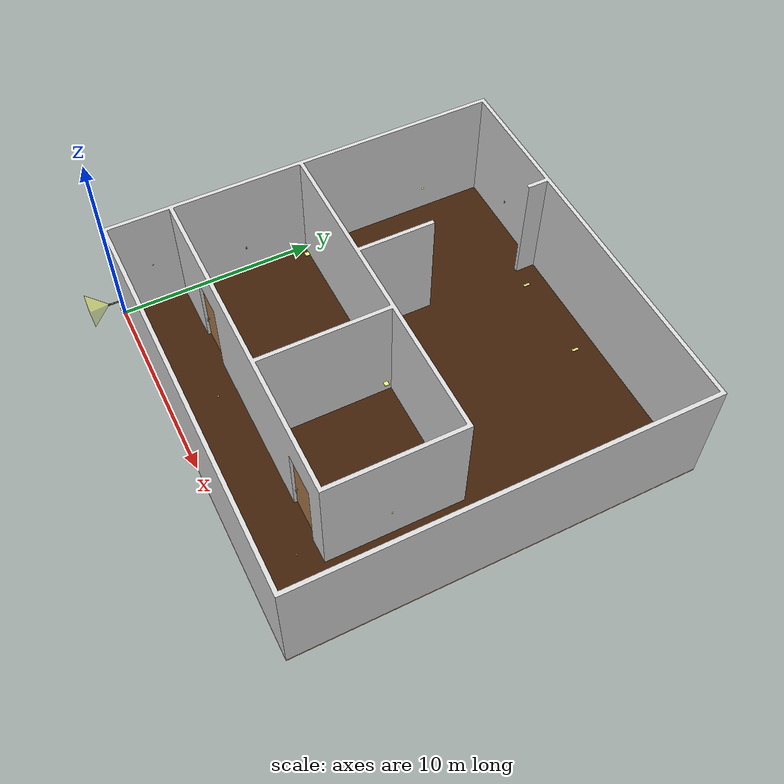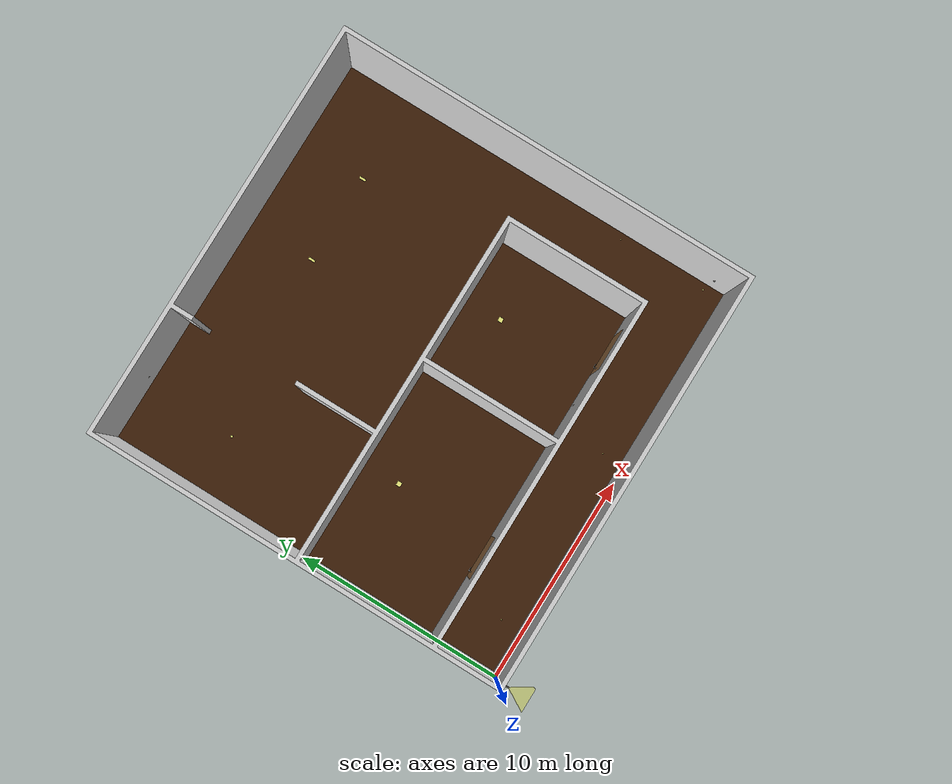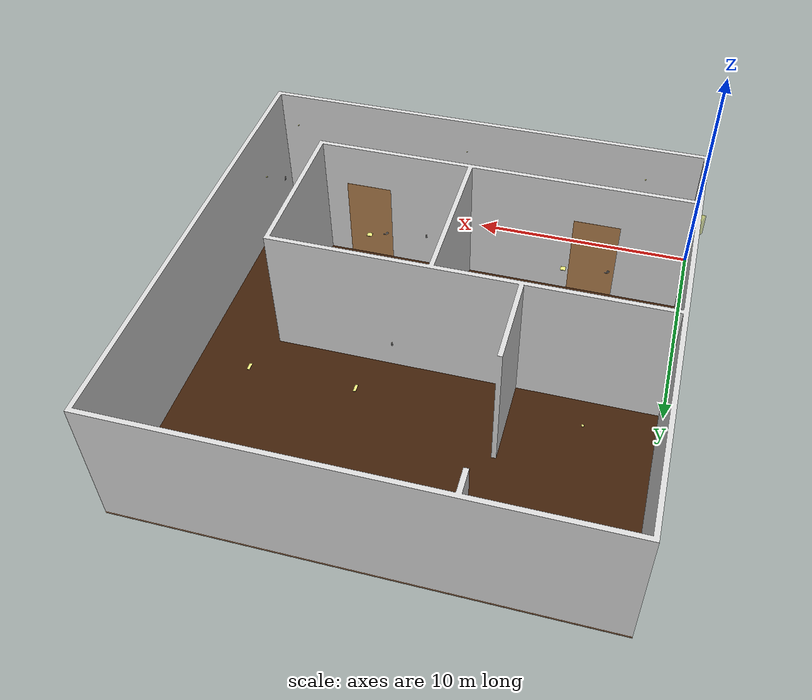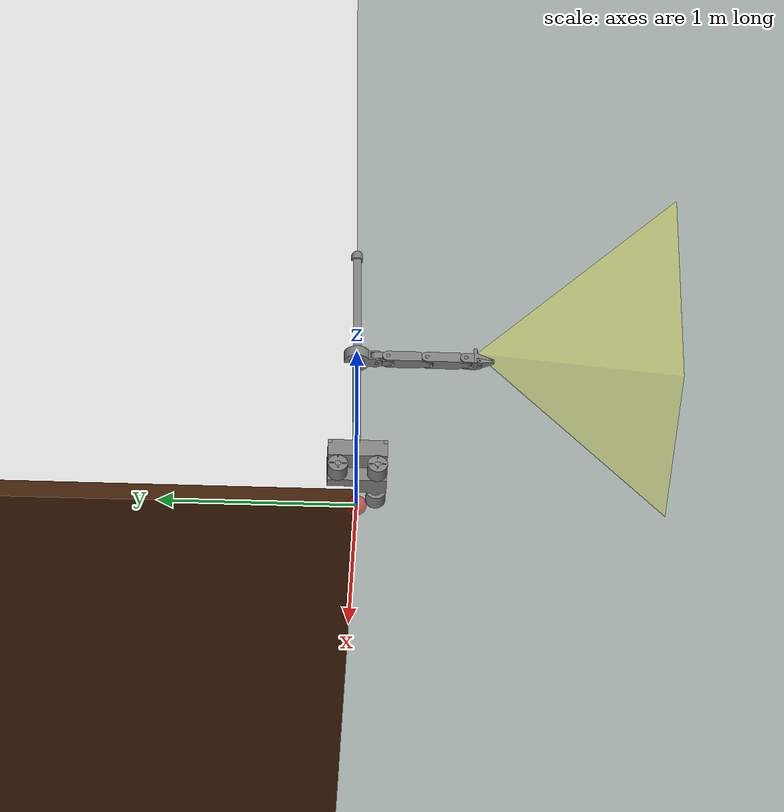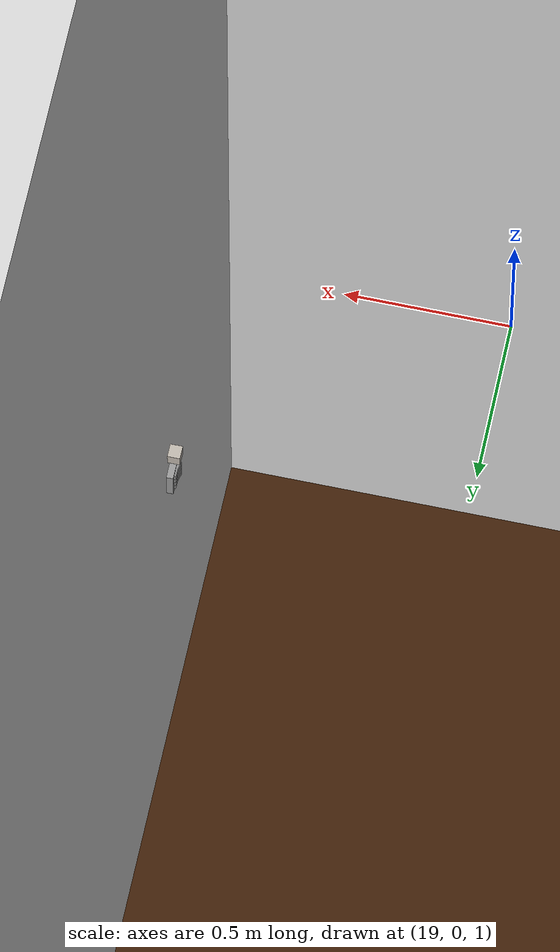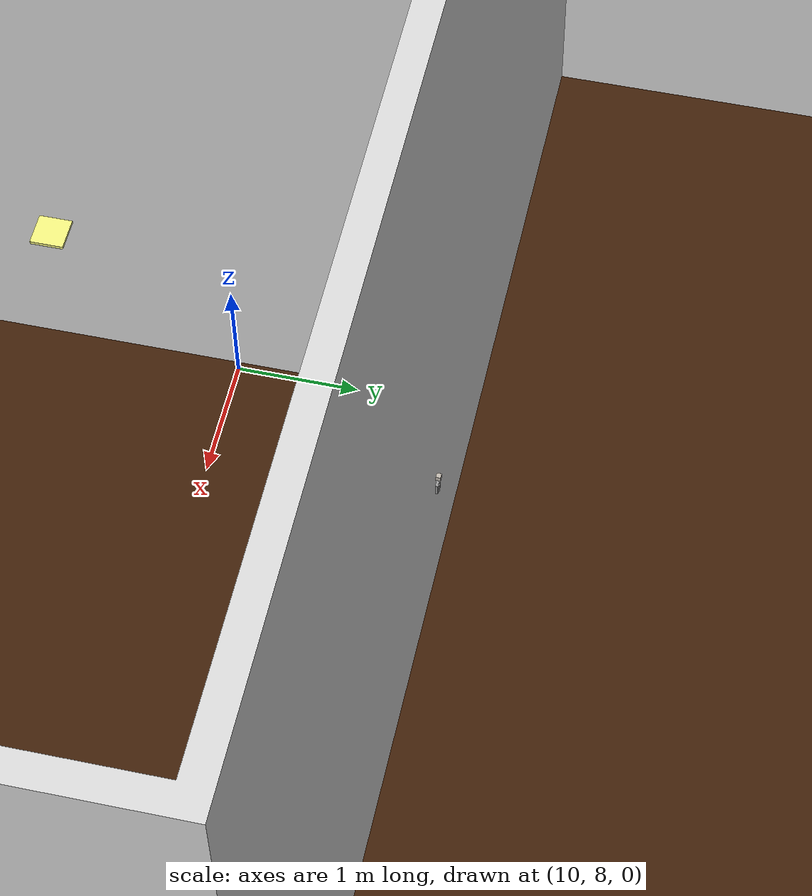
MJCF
<?xml version='1.0' encoding='utf-8'?>
<mujoco model="rami_phase4_world">
  <compiler angle="radian" />
  <include file="rami_world.xml" />
  <include file="../indoor_description/indoor_world.xml" />

  <worldbody>
    <light pos="0 0 3" dir="0 0 -1" directional="true" castshadow="false" />
  </worldbody>
</mujoco>

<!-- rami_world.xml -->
<mujoco model="robot_RAMI_v1_urdf">
  <compiler angle="radian" />

  <asset>
    <!-- Sensor Visualization Materials and Meshes -->
    <material name="vis_camera" rgba="1 1 0 0.3" emission="1" />
    <material name="vis_ultrasonic" rgba="0 0.5 1 0.3" emission="1" />
    <mesh name="visual_pyramid_head" content_type="model/stl" file="d:/Programming/RAMI_Project/robot_RAMI_v1_urdf_description/meshes/visual_pyramid.stl" scale="16.782 16.782 10" />
    <mesh name="visual_pyramid_gripper" content_type="model/stl" file="d:/Programming/RAMI_Project/robot_RAMI_v1_urdf_description/meshes/visual_pyramid.stl" scale="1.154 1.154 1" />
    <mesh name="visual_cone_us" content_type="model/stl" file="d:/Programming/RAMI_Project/robot_RAMI_v1_urdf_description/meshes/visual_cone.stl" scale="1.339 1.339 5" />

    <mesh name="base_link" content_type="model/stl" file="d:/Programming/RAMI_Project/robot_RAMI_v1_urdf_description/meshes/base_link.stl" scale="0.001 0.001 0.001" />
    <mesh name="weel_left_front_1" content_type="model/stl" file="d:/Programming/RAMI_Project/robot_RAMI_v1_urdf_description/meshes/weel_left_front_1.stl" scale="0.001 0.001 0.001" />
    <mesh name="weel_left_back_1" content_type="model/stl" file="d:/Programming/RAMI_Project/robot_RAMI_v1_urdf_description/meshes/weel_left_back_1.stl" scale="0.001 0.001 0.001" />
    <mesh name="weel_right_front_1" content_type="model/stl" file="d:/Programming/RAMI_Project/robot_RAMI_v1_urdf_description/meshes/weel_right_front_1.stl" scale="0.001 0.001 0.001" />
    <mesh name="weel_right_back_1" content_type="model/stl" file="d:/Programming/RAMI_Project/robot_RAMI_v1_urdf_description/meshes/weel_right_back_1.stl" scale="0.001 0.001 0.001" />
    <mesh name="pillar_link_1" content_type="model/stl" file="d:/Programming/RAMI_Project/robot_RAMI_v1_urdf_description/meshes/pillar_link_1.stl" scale="0.001 0.001 0.001" />
    <mesh name="lift_slide_link_1" content_type="model/stl" file="d:/Programming/RAMI_Project/robot_RAMI_v1_urdf_description/meshes/lift_slide_link_1.stl" scale="0.001 0.001 0.001" />
    <mesh name="rotation_link_1" content_type="model/stl" file="d:/Programming/RAMI_Project/robot_RAMI_v1_urdf_description/meshes/rotation_link_1.stl" scale="0.001 0.001 0.001" />
    <mesh name="arm_link_1_1" content_type="model/stl" file="d:/Programming/RAMI_Project/robot_RAMI_v1_urdf_description/meshes/arm_link_1_1.stl" scale="0.001 0.001 0.001" />
    <mesh name="arm_link_2_1" content_type="model/stl" file="d:/Programming/RAMI_Project/robot_RAMI_v1_urdf_description/meshes/arm_link_2_1.stl" scale="0.001 0.001 0.001" />
    <mesh name="arm_link_3_1" content_type="model/stl" file="d:/Programming/RAMI_Project/robot_RAMI_v1_urdf_description/meshes/arm_link_3_1.stl" scale="0.001 0.001 0.001" />
    <mesh name="arm_link_4_1" content_type="model/stl" file="d:/Programming/RAMI_Project/robot_RAMI_v1_urdf_description/meshes/arm_link_4_1.stl" scale="0.001 0.001 0.001" />
    <mesh name="arm_link_5_1" content_type="model/stl" file="d:/Programming/RAMI_Project/robot_RAMI_v1_urdf_description/meshes/arm_link_5_1.stl" scale="0.001 0.001 0.001" />
    <mesh name="arm_link_6_1" content_type="model/stl" file="d:/Programming/RAMI_Project/robot_RAMI_v1_urdf_description/meshes/arm_link_6_1.stl" scale="0.001 0.001 0.001" />
    <mesh name="depth_camera_1" content_type="model/stl" file="d:/Programming/RAMI_Project/robot_RAMI_v1_urdf_description/meshes/depth_camera_1.stl" scale="0.001 0.001 0.001" />
    <mesh name="gripper_camera_1" content_type="model/stl" file="d:/Programming/RAMI_Project/robot_RAMI_v1_urdf_description/meshes/gripper_camera_1.stl" scale="0.001 0.001 0.001" />
    <mesh name="ultrasonic_sensor_1_1" content_type="model/stl" file="d:/Programming/RAMI_Project/robot_RAMI_v1_urdf_description/meshes/ultrasonic_sensor_1_1.stl" scale="0.001 0.001 0.001" />
    <mesh name="ultrasonic_sensor_2_1" content_type="model/stl" file="d:/Programming/RAMI_Project/robot_RAMI_v1_urdf_description/meshes/ultrasonic_sensor_2_1.stl" scale="0.001 0.001 0.001" />
    <mesh name="ultrasonic_sensor_3_1" content_type="model/stl" file="d:/Programming/RAMI_Project/robot_RAMI_v1_urdf_description/meshes/ultrasonic_sensor_3_1.stl" scale="0.001 0.001 0.001" />
    <mesh name="ultrasonic_sensor_4_1" content_type="model/stl" file="d:/Programming/RAMI_Project/robot_RAMI_v1_urdf_description/meshes/ultrasonic_sensor_4_1.stl" scale="0.001 0.001 0.001" />
    <mesh name="ultrasonic_sensor_5_1" content_type="model/stl" file="d:/Programming/RAMI_Project/robot_RAMI_v1_urdf_description/meshes/ultrasonic_sensor_5_1.stl" scale="0.001 0.001 0.001" />
    <mesh name="ultrasonic_sensor_6_1" content_type="model/stl" file="d:/Programming/RAMI_Project/robot_RAMI_v1_urdf_description/meshes/ultrasonic_sensor_6_1.stl" scale="0.001 0.001 0.001" />
    <mesh name="ultrasonic_sensor_7_1" content_type="model/stl" file="d:/Programming/RAMI_Project/robot_RAMI_v1_urdf_description/meshes/ultrasonic_sensor_7_1.stl" scale="0.001 0.001 0.001" />
    <mesh name="ultrasonic_sensor_8_1" content_type="model/stl" file="d:/Programming/RAMI_Project/robot_RAMI_v1_urdf_description/meshes/ultrasonic_sensor_8_1.stl" scale="0.001 0.001 0.001" />
    <mesh name="imu_sensor_1" content_type="model/stl" file="d:/Programming/RAMI_Project/robot_RAMI_v1_urdf_description/meshes/imu_sensor_1.stl" scale="0.001 0.001 0.001" />
  </asset>

  <worldbody>
    <!-- 시각적 IK 타겟 마커 (빨간 반투명 구체, mocap 바디로 설정하여 런타임 이동 가능) -->
    <body name="target_marker" pos="0 0 0" mocap="true">
        <geom type="sphere" size="0.05" rgba="1 0 0 0.5" contype="0" conaffinity="0" group="1"/>
    </body>
    <light pos="0 0 3" dir="0 0 -1" directional="true" castshadow="false" />

    <body name="base_link" pos="0 0 0.085">
      <inertial pos="0 0 0.264356" mass="109.995" diaginertia="12.2755 12.1424 1.27632" />
      <joint name="root_x" type="slide" axis="1 0 0" damping="2" frictionloss="0.5" />
      <joint name="root_y" type="slide" axis="0 1 0" damping="2" frictionloss="0.5" />
      <joint name="root_z_rot" type="hinge" axis="0 0 1" damping="2" frictionloss="0.5" />
      <geom type="mesh" mesh="base_link" contype="0" conaffinity="0" />
      <!-- SLAM 벽면 충돌을 위한 베이스 프록시 (바닥과 닿지 않도록 Z 위치를 높임) -->
      <geom type="cylinder" size="0.25 0.3" pos="0 0 0.4" contype="1" conaffinity="1" rgba="0 1 0 0.0" group="3" />
      <geom type="mesh" mesh="pillar_link_1" contype="2" conaffinity="2" />
      <geom type="mesh" mesh="depth_camera_1" contype="0" conaffinity="0" />
      <geom type="mesh" mesh="ultrasonic_sensor_1_1" contype="0" conaffinity="0" />
      <geom type="mesh" mesh="ultrasonic_sensor_2_1" contype="0" conaffinity="0" />
      <geom type="mesh" mesh="ultrasonic_sensor_3_1" contype="0" conaffinity="0" />
      <geom type="mesh" mesh="ultrasonic_sensor_4_1" contype="0" conaffinity="0" />
      <geom type="mesh" mesh="ultrasonic_sensor_5_1" contype="0" conaffinity="0" />
      <geom type="mesh" mesh="ultrasonic_sensor_6_1" contype="0" conaffinity="0" />
      <geom type="mesh" mesh="ultrasonic_sensor_7_1" contype="0" conaffinity="0" />
      <geom type="mesh" mesh="ultrasonic_sensor_8_1" contype="0" conaffinity="0" />
      <geom type="mesh" mesh="imu_sensor_1" contype="0" conaffinity="0" />

      <!-- Sensors on base_link -->
      <camera name="head_camera" pos="0 0 1.515" xyaxes="-1 0 0 0 0 1" fovy="80" />
      <geom name="head_cam_vis" type="mesh" mesh="visual_pyramid_head" pos="0 0 1.515" xyaxes="-1 0 0 0 0 1" material="vis_camera" contype="0" conaffinity="0" group="5" />

      <site name="imu_site" pos="0 0 0.055" />

      <site name="us_site_1" pos="0.14 -0.14 0.195" zaxis="1 -1 0" />
      <geom name="us_vis_1" type="mesh" mesh="visual_cone_us" pos="0.14 -0.14 0.195" zaxis="1 -1 0" material="vis_ultrasonic" contype="0" conaffinity="0" group="5" />

      <site name="us_site_2" pos="0 -0.14 0.195" zaxis="0 -1 0" />
      <geom name="us_vis_2" type="mesh" mesh="visual_cone_us" pos="0 -0.14 0.195" zaxis="0 -1 0" material="vis_ultrasonic" contype="0" conaffinity="0" group="5" />

      <site name="us_site_3" pos="-0.14 -0.14 0.195" zaxis="-1 -1 0" />
      <geom name="us_vis_3" type="mesh" mesh="visual_cone_us" pos="-0.14 -0.14 0.195" zaxis="-1 -1 0" material="vis_ultrasonic" contype="0" conaffinity="0" group="5" />

      <site name="us_site_4" pos="-0.14 0 0.195" zaxis="-1 0 0" />
      <geom name="us_vis_4" type="mesh" mesh="visual_cone_us" pos="-0.14 0 0.195" zaxis="-1 0 0" material="vis_ultrasonic" contype="0" conaffinity="0" group="5" />

      <site name="us_site_5" pos="-0.14 0.14 0.195" zaxis="-1 1 0" />
      <geom name="us_vis_5" type="mesh" mesh="visual_cone_us" pos="-0.14 0.14 0.195" zaxis="-1 1 0" material="vis_ultrasonic" contype="0" conaffinity="0" group="5" />

      <site name="us_site_6" pos="0 0.14 0.195" zaxis="0 1 0" />
      <geom name="us_vis_6" type="mesh" mesh="visual_cone_us" pos="0 0.14 0.195" zaxis="0 1 0" material="vis_ultrasonic" contype="0" conaffinity="0" group="5" />

      <site name="us_site_7" pos="0.14 0.14 0.195" zaxis="1 1 0" />
      <geom name="us_vis_7" type="mesh" mesh="visual_cone_us" pos="0.14 0.14 0.195" zaxis="1 1 0" material="vis_ultrasonic" contype="0" conaffinity="0" group="5" />

      <site name="us_site_8" pos="0.14 0 0.195" zaxis="1 0 0" />
      <geom name="us_vis_8" type="mesh" mesh="visual_cone_us" pos="0.14 0 0.195" zaxis="1 0 0" material="vis_ultrasonic" contype="0" conaffinity="0" group="5" />

      <body name="weel_left_front_1" pos="0.15 -0.1 0.065">
        <inertial pos="-0.0404219 0 0" mass="4.43493" diaginertia="0.006057 0.005355 0.005355" />
        <joint name="weel_LF_joint" pos="0 0 0" axis="1 0 0" damping="0.1" frictionloss="0.01" />
        <geom pos="-0.15 0.1 -0.065" type="mesh" mesh="weel_left_front_1" contype="0" conaffinity="0" />
      </body>
      <body name="weel_left_back_1" pos="0.15 0.1 0.065">
        <inertial pos="-0.0404219 0 0" mass="4.43493" diaginertia="0.006057 0.005355 0.005355" />
        <joint name="weel_LB_joint" pos="0 0 0" axis="1 0 0" damping="0.1" frictionloss="0.01" />
        <geom pos="-0.15 -0.1 -0.065" type="mesh" mesh="weel_left_back_1" contype="0" conaffinity="0" />
      </body>
      <body name="weel_right_front_1" pos="-0.15 -0.1 0.065">
        <inertial pos="0.0404219 0 0" mass="4.43493" diaginertia="0.006057 0.005355 0.005355" />
        <joint name="weel_RF_joint" pos="0 0 0" axis="-1 0 0" damping="0.1" frictionloss="0.01" />
        <geom pos="0.15 0.1 -0.065" type="mesh" mesh="weel_right_front_1" contype="0" conaffinity="0" />
      </body>
      <body name="weel_right_back_1" pos="-0.15 0.1 0.065">
        <inertial pos="0.0404219 0 0" mass="4.43493" diaginertia="0.006057 0.005355 0.005355" />
        <joint name="weel_RB_joint" pos="0 0 0" axis="-1 0 0" damping="0.1" frictionloss="0.01" />
        <geom pos="0.15 -0.1 -0.065" type="mesh" mesh="weel_right_back_1" contype="0" conaffinity="0" />
      </body>
      <body name="lift_slide_link_1" pos="0 -0.02 0.865">
        <inertial pos="0 0.02 0" quat="0.5 0.5 -0.5 0.5" mass="1.6139" diaginertia="0.001693 0.001331 0.001331" />
        <joint name="lift_slide_joint" pos="0 0 0" axis="0 0 1" type="slide" range="-0.62 0.62" actuatorfrcrange="-10000 10000" damping="2000" frictionloss="20" />
        <geom pos="0 0.02 -0.865" quat="1 0 0 0" type="mesh" mesh="lift_slide_link_1" contype="0" conaffinity="0" />
        <body name="rotation_link_1" pos="0 0.02 0.03">
          <inertial pos="0 -0.0110341 -0.03" quat="0.5 0.5 -0.5 0.5" mass="4.89403" diaginertia="0.017752 0.012634 0.008358" />
          <joint name="rotation_joint" pos="0 0 0" axis="0 0 1" range="-3.14159 3.14159" actuatorfrcrange="-1000 1000" damping="50" frictionloss="10" />
          <geom pos="0 0 -0.895" quat="1 0 0 0" type="mesh" mesh="rotation_link_1" />
          <body name="arm_link_1_1" pos="0 -0.1 0">
            <inertial pos="0 -0.03 -0.03" quat="0.707107 0.707107 0 0" mass="2.11686" diaginertia="0.002544 0.002544 0.000873" />
            <joint name="arm_joint_1" pos="0 0 0" axis="0 0 -1" range="-1.5708 1.5708" actuatorfrcrange="-1000 1000" damping="50" frictionloss="10" />
            <geom pos="0 0.1 -0.895" quat="1 0 0 0" type="mesh" mesh="arm_link_1_1" />
            <body name="arm_link_2_1" pos="-0.03 -0.06 -0.03">
              <inertial pos="0.03 -0.110769 0" quat="0.5 0.5 -0.5 0.5" mass="5.47006" diaginertia="0.022162 0.022112 0.003232" />
              <joint name="arm_joint_2" pos="0 0 0" axis="-1 0 0" range="-1.5708 1.5708" actuatorfrcrange="-1000 1000" damping="50" frictionloss="10" />
              <geom pos="0.03 0.16 -0.865" quat="1 0 0 0" type="mesh" mesh="arm_link_2_1" contype="3" conaffinity="3" />
              <body name="arm_link_3_1" pos="0 -0.2 0">
                <inertial pos="0.03 -0.110769 0" quat="0.5 0.5 -0.5 0.5" mass="5.47006" diaginertia="0.022162 0.022112 0.003232" />
                <joint name="arm_joint_3" pos="0 0 0" axis="-1 0 0" range="-1.5708 1.5708" actuatorfrcrange="-1000 1000" damping="50" frictionloss="10" />
                <geom pos="0.03 0.36 -0.865" quat="1 0 0 0" type="mesh" mesh="arm_link_3_1" contype="3" conaffinity="3" />
                <body name="arm_link_4_1" pos="0 -0.2 0">
                  <inertial pos="0.03 -0.0162805 0" quat="0 0.707107 0 0.707107" mass="0.762492" diaginertia="0.000704 0.000593 0.000549" />
                  <joint name="arm_joint_4" pos="0 0 0" axis="-1 0 0" range="-1.5708 1.5708" actuatorfrcrange="-1000 1000" damping="50" frictionloss="10" />
                  <geom pos="0.03 0.56 -0.865" quat="1 0 0 0" type="mesh" mesh="arm_link_4_1" contype="3" conaffinity="3" />
                  <body name="arm_link_5_1" pos="0.03 -0.04 0">
                    <inertial pos="0.000593162 -0.0243798 0.0140847" quat="0.422271 0.905813 0.00466835 -0.0341912" mass="1.24729" diaginertia="0.00130091 0.00103352 0.000791539" />
                    <joint name="arm_joint_5" pos="0 0 0" axis="0 1 0" range="-3.14159 3.14159" actuatorfrcrange="-1000 1000" damping="50" frictionloss="10" />
                    <geom pos="0 0.6 -0.865" type="mesh" mesh="arm_link_5_1" contype="3" conaffinity="3" />
                    <geom pos="0 0.6 -0.865" quat="1 0 0 0" type="mesh" mesh="gripper_camera_1" />

                    <camera name="gripper_camera" pos="0 -0.015 0.05" xyaxes="-1 0 0 0 0 1" fovy="60" />
                    <geom name="gripper_cam_vis" type="mesh" mesh="visual_pyramid_gripper" pos="0 -0.015 0.05" xyaxes="-1 0 0 0 0 1" material="vis_camera" contype="0" conaffinity="0" group="2" />

                    <body name="arm_link_6_1" pos="-0.005 -0.03 -0.015">
                      <inertial pos="0.005 -0.0180282 0.00316455" quat="0.534551 0.462877 -0.462877 0.534551" mass="0.44765" diaginertia="0.0002929 0.000233 0.0001021" />
                      <joint name="arm_joint_6" pos="0 0 0" axis="1 0 0" range="0 1.5708" actuatorfrcrange="-1000 1000" damping="50" frictionloss="10" />
                      <geom pos="0.005 0.63 -0.85" quat="1 0 0 0" type="mesh" mesh="arm_link_6_1" contype="3" conaffinity="3" />
                    </body>
                  </body>
                </body>
              </body>
            </body>
          </body>
        </body>
      </body>
    </body>
  </worldbody>

  <actuator>
    <velocity name="base_vx" joint="root_x" kv="200" ctrlrange="-5 5" />
    <velocity name="base_vy" joint="root_y" kv="200" ctrlrange="-5 5" />
    <velocity name="base_wz" joint="root_z_rot" kv="100" ctrlrange="-5 5" />

    <velocity name="weel_lf" joint="weel_LF_joint" kv="2" ctrlrange="-50 50" />
    <velocity name="weel_lb" joint="weel_LB_joint" kv="2" ctrlrange="-50 50" />
    <velocity name="weel_rf" joint="weel_RF_joint" kv="2" ctrlrange="-50 50" />
    <velocity name="weel_rb" joint="weel_RB_joint" kv="2" ctrlrange="-50 50" />

    <!-- 리프트 및 암 조인트 Position Actuator -->
    <position name="act_lift" joint="lift_slide_joint" kp="50000" forcerange="-10000 10000" ctrlrange="-0.62 0.62" />
    <position name="act_rot" joint="rotation_joint" kp="10000" forcerange="-1000 1000" ctrlrange="-3.14159 3.14159" />
    <position name="act_arm1" joint="arm_joint_1" kp="15000" forcerange="-1000 1000" ctrlrange="-1.5708 1.5708" />
    <position name="act_arm2" joint="arm_joint_2" kp="15000" forcerange="-1000 1000" ctrlrange="-1.5708 1.5708" />
    <position name="act_arm3" joint="arm_joint_3" kp="15000" forcerange="-1000 1000" ctrlrange="-1.5708 1.5708" />
    <position name="act_arm4" joint="arm_joint_4" kp="15000" forcerange="-1000 1000" ctrlrange="-1.5708 1.5708" />
    <position name="act_arm5" joint="arm_joint_5" kp="15000" forcerange="-1000 1000" ctrlrange="-3.14159 3.14159" />
    <position name="act_arm6" joint="arm_joint_6" kp="15000" forcerange="-1000 1000" ctrlrange="0 1.5708" />
  </actuator>

  <sensor>
    <accelerometer name="imu_accel" site="imu_site" />
    <gyro name="imu_gyro" site="imu_site" />
    <rangefinder name="ultrasonic_sensor_1" site="us_site_1" />
    <rangefinder name="ultrasonic_sensor_2" site="us_site_2" />
    <rangefinder name="ultrasonic_sensor_3" site="us_site_3" />
    <rangefinder name="ultrasonic_sensor_4" site="us_site_4" />
    <rangefinder name="ultrasonic_sensor_5" site="us_site_5" />
    <rangefinder name="ultrasonic_sensor_6" site="us_site_6" />
    <rangefinder name="ultrasonic_sensor_7" site="us_site_7" />
    <rangefinder name="ultrasonic_sensor_8" site="us_site_8" />
  </sensor>

</mujoco>

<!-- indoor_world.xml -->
<mujoco model="indoor_space_urdf">
  <compiler angle="radian" />

  <asset>
    <mesh name="room_base_link" content_type="model/stl" file="../../indoor_space_urdf_description/meshes/base_link.stl" scale="0.001 0.001 0.001" />
    <mesh name="wall_1" content_type="model/stl" file="../../indoor_space_urdf_description/meshes/wall_1.stl" scale="0.001 0.001 0.001" />
    <mesh name="door_1_1" content_type="model/stl" file="../../indoor_space_urdf_description/meshes/door_1_1.stl" scale="0.001 0.001 0.001" />
    <mesh name="door_2_1" content_type="model/stl" file="../../indoor_space_urdf_description/meshes/door_2_1.stl" scale="0.001 0.001 0.001" />
    <mesh name="latch_1_1" content_type="model/stl" file="../../indoor_space_urdf_description/meshes/latch_1_1.stl" scale="0.001 0.001 0.001" />
    <mesh name="latch_2_1" content_type="model/stl" file="../../indoor_space_urdf_description/meshes/latch_2_1.stl" scale="0.001 0.001 0.001" />
    <mesh name="door_handle_1_1" content_type="model/stl" file="../../indoor_space_urdf_description/meshes/door_handle_1_1.stl" scale="0.001 0.001 0.001" />
    <mesh name="toggle_switch_case_living-room_1" content_type="model/stl" file="../../indoor_space_urdf_description/meshes/toggle_switch_case_living-room_1.stl" scale="0.001 0.001 0.001" />
    <mesh name="toggle_switch_case_corridor_1" content_type="model/stl" file="../../indoor_space_urdf_description/meshes/toggle_switch_case_corridor_1.stl" scale="0.001 0.001 0.001" />
    <mesh name="toggle_switch_H20_corridor-lamp_2_1" content_type="model/stl" file="../../indoor_space_urdf_description/meshes/toggle_switch_H20_corridor-lamp_2_1.stl" scale="0.001 0.001 0.001" />
    <mesh name="door_handle_2_1" content_type="model/stl" file="../../indoor_space_urdf_description/meshes/door_handle_2_1.stl" scale="0.001 0.001 0.001" />
    <mesh name="toggle_switch_H20_corridor-lamp_3_1" content_type="model/stl" file="../../indoor_space_urdf_description/meshes/toggle_switch_H20_corridor-lamp_3_1.stl" scale="0.001 0.001 0.001" />
    <mesh name="toggle_switch_H20_corridor-lamp_4_1" content_type="model/stl" file="../../indoor_space_urdf_description/meshes/toggle_switch_H20_corridor-lamp_4_1.stl" scale="0.001 0.001 0.001" />
    <mesh name="toggle_switch_case_kitchen_1" content_type="model/stl" file="../../indoor_space_urdf_description/meshes/toggle_switch_case_kitchen_1.stl" scale="0.001 0.001 0.001" />
    <mesh name="toggle_switch_H80_kitchen-lamp_1_1" content_type="model/stl" file="../../indoor_space_urdf_description/meshes/toggle_switch_H80_kitchen-lamp_1_1.stl" scale="0.001 0.001 0.001" />
    <mesh name="toggle_switch_H40_living-room-lamp_1_1" content_type="model/stl" file="../../indoor_space_urdf_description/meshes/toggle_switch_H40_living-room-lamp_1_1.stl" scale="0.001 0.001 0.001" />
    <mesh name="toggle_switch_H40_living-room-lamp_2_1" content_type="model/stl" file="../../indoor_space_urdf_description/meshes/toggle_switch_H40_living-room-lamp_2_1.stl" scale="0.001 0.001 0.001" />
    <mesh name="toggle_switch_H20_corridor-lamp_1_1" content_type="model/stl" file="../../indoor_space_urdf_description/meshes/toggle_switch_H20_corridor-lamp_1_1.stl" scale="0.001 0.001 0.001" />
    <mesh name="toggle_switch_case_room_1_1" content_type="model/stl" file="../../indoor_space_urdf_description/meshes/toggle_switch_case_room_1_1.stl" scale="0.001 0.001 0.001" />
    <mesh name="toggle_switch_H80_room-ramp_1_1" content_type="model/stl" file="../../indoor_space_urdf_description/meshes/toggle_switch_H80_room-ramp_1_1.stl" scale="0.001 0.001 0.001" />
    <mesh name="key_switch_case_room_2_1" content_type="model/stl" file="../../indoor_space_urdf_description/meshes/key_switch_case_room_2_1.stl" scale="0.001 0.001 0.001" />
    <mesh name="key_switch_room-ramp_2_1" content_type="model/stl" file="../../indoor_space_urdf_description/meshes/key_switch_room-ramp_2_1.stl" scale="0.001 0.001 0.001" />
    <mesh name="ceiling_v1_1" content_type="model/stl" file="../../indoor_space_urdf_description/meshes/ceiling_v1_1.stl" scale="0.001 0.001 0.001" />
  <texture name="tex_wood" type="2d" builtin="checker" rgb1="0.3 0.15 0.05" rgb2="0.2 0.1 0.02" width="512" height="512" mark="edge" markrgb="0.1 0.05 0.01" /><material name="mat_wood" texture="tex_wood" texrepeat="20 20" reflectance="0.1" /><material name="mat_lamp" rgba="0.95 0.95 0.5 1" emission="1.0" /><texture name="tex_qr" type="2d" builtin="checker" rgb1="0 0 0" rgb2="1 1 1" width="128" height="128" mark="none" /><material name="mat_qr" texture="tex_qr" texrepeat="5 5" emission="0.5" /><texture name="tex_qr_switch_case_1" type="cube" file="../../indoor_space_urdf_description/meshes/qr_codes/switch_case_1.png" /><material name="mat_qr_switch_case_1" texture="tex_qr_switch_case_1" emission="0.5" /><texture name="tex_qr_switch_case_2" type="cube" file="../../indoor_space_urdf_description/meshes/qr_codes/switch_case_2.png" /><material name="mat_qr_switch_case_2" texture="tex_qr_switch_case_2" emission="0.5" /><texture name="tex_qr_switch_case_3" type="cube" file="../../indoor_space_urdf_description/meshes/qr_codes/switch_case_3.png" /><material name="mat_qr_switch_case_3" texture="tex_qr_switch_case_3" emission="0.5" /><texture name="tex_qr_switch_case_4" type="cube" file="../../indoor_space_urdf_description/meshes/qr_codes/switch_case_4.png" /><material name="mat_qr_switch_case_4" texture="tex_qr_switch_case_4" emission="0.5" /><texture name="tex_qr_switch_case_5" type="cube" file="../../indoor_space_urdf_description/meshes/qr_codes/switch_case_5.png" /><material name="mat_qr_switch_case_5" texture="tex_qr_switch_case_5" emission="0.5" /></asset>

  <worldbody>
    <geom type="mesh" mesh="room_base_link" material="mat_wood" />
    <geom type="mesh" mesh="wall_1" rgba="0.85 0.85 0.85 1" />
    <geom pos="0 0 0" quat="1 0 0 0" type="mesh" mesh="toggle_switch_case_living-room_1" rgba="0.6 0.6 0.6 1" />
    <geom pos="0 0 0" type="mesh" mesh="toggle_switch_case_corridor_1" rgba="0.6 0.6 0.6 1" />
    <geom pos="0 0 0" quat="1 0 0 0" type="mesh" mesh="toggle_switch_case_kitchen_1" rgba="0.6 0.6 0.6 1" />
    <geom pos="0 0 0" quat="1 0 0 0" type="mesh" mesh="toggle_switch_case_room_1_1" rgba="0.6 0.6 0.6 1" />
    <geom pos="0 0 0" type="mesh" mesh="key_switch_case_room_2_1" rgba="0.6 0.6 0.6 1" />
    <geom type="mesh" mesh="ceiling_v1_1" group="3" rgba="0.85 0.85 0.85 1" />
    <geom size="0.025 0.025 0.01" pos="2.5 1.5 5.45" type="box" material="mat_lamp" />
    <geom size="0.025 0.025 0.01" pos="10.5 1.5 5.45" type="box" material="mat_lamp" />
    <geom size="0.025 0.025 0.01" pos="18.5 1.5 5.45" type="box" material="mat_lamp" />
    <geom size="0.025 0.025 0.01" pos="18.5 5.5 5.45" type="box" material="mat_lamp" />
    <geom size="0.1 0.1 0.01" pos="5 8 5.45" type="box" material="mat_lamp" />
    <geom size="0.1 0.1 0.01" pos="13 8 5.45" type="box" material="mat_lamp" />
    <geom size="0.05 0.15 0.01" pos="11 16 5.45" type="box" material="mat_lamp" />
    <geom size="0.05 0.15 0.01" pos="15 16 5.45" type="box" material="mat_lamp" />
    <geom size="0.05 0.01" pos="3 15 4.6875" type="cylinder" material="mat_lamp" />
    <body name="door_1_1" pos="5.2 3.4 2.1">
      <inertial pos="-1.02357 -0.025 0.000844161" quat="0.707107 -0.000251454 -0.000251454 0.707107" mass="3205.02" diaginertia="5378.26 4258.48 1121.11" />
      <joint name="door_1_1_joint" pos="0 0 0" axis="0 0 1" range="-2.79253 0" actuatorfrcrange="-100 100" limited="true" frictionloss="0.5" damping="2.0" />
      <geom pos="-5.2 -3.4 -2.1" quat="1 0 0 0" type="mesh" mesh="door_1_1" rgba="0.7 0.5 0.3 1" />
      <body name="latch_1_1" pos="1.325 -3.25 -0.29">
        <inertial pos="-3.37218 3.226 -0.08" quat="0.529897 0.529897 0.468198 0.468198" mass="0.630692" diaginertia="0.000296862 0.000208 0.000174138" />
        <joint name="latch_1_1_joint" pos="0 0 0" axis="1 0 0" type="slide" range="0 0.04" actuatorfrcrange="-100 100" limited="true" frictionloss="0.5" damping="1.0" stiffness="50.0" springref="0" />
        <geom pos="-6.525 -0.15 -1.81" quat="1 0 0 0" type="mesh" mesh="latch_1_1" rgba="0.6 0.6 0.6 1" />
      </body>
      <body name="door_handle_1_1" pos="-1.8 -0.05 -0.595">
        <inertial pos="0.0174026 0.025 0.00083086" quat="0.495559 0.495559 -0.504402 0.504402" mass="7.30752" diaginertia="0.0511667 0.0392913 0.0191" />
        <joint name="door_handle_1_1_joint" pos="0 0 0" axis="0 1 0" range="0 0.785398" actuatorfrcrange="-100 100" limited="true" frictionloss="0.1" damping="0.5" stiffness="50.0" springref="0" />
        <geom pos="-3.4 -3.35 -1.505" quat="1 0 0 0" type="mesh" mesh="door_handle_1_1" rgba="0.6 0.6 0.6 1" />
      </body>
    </body>
    <body name="door_2_1" pos="15.6 3.4 2.1">
      <inertial pos="-1.02357 -0.025 0.000844161" quat="0.707107 -0.000251454 -0.000251454 0.707107" mass="3205.02" diaginertia="5378.26 4258.48 1121.11" />
      <joint name="door_2_1_joint" pos="0 0 0" axis="0 0 1" range="-2.00713 0" actuatorfrcrange="-100 100" limited="true" frictionloss="0.5" damping="2.0" />
      <geom pos="-15.6 -3.4 -2.1" quat="1 0 0 0" type="mesh" mesh="door_2_1" rgba="0.7 0.5 0.3 1" />
      <body name="latch_2_1" pos="1.325 -13.65 -0.29">
        <inertial pos="-3.3722 13.626 -0.08" quat="0.529897 0.529897 0.468198 0.468198" mass="0.630692" diaginertia="0.000296862 0.000208 0.000174138" />
        <joint name="latch_2_1_joint" pos="0 0 0" axis="1 0 0" type="slide" range="0 0.04" actuatorfrcrange="-100 100" limited="true" frictionloss="0.5" damping="1.0" stiffness="50.0" springref="0" />
        <geom pos="-16.925 10.25 -1.81" quat="1 0 0 0" type="mesh" mesh="latch_2_1" rgba="0.6 0.6 0.6 1" />
      </body>
      <body name="door_handle_2_1" pos="-1.8 -0.05 -0.595">
        <inertial pos="0.0174026 0.025 0.00083086" quat="0.495559 0.495559 -0.504402 0.504402" mass="7.30752" diaginertia="0.0511667 0.0392913 0.0191" />
        <joint name="door_handle_2_1_joint" pos="0 0 0" axis="0 1 0" range="0 0.785398" actuatorfrcrange="-100 100" limited="true" frictionloss="0.1" damping="0.5" stiffness="50.0" springref="0" />
        <geom pos="-13.8 -3.35 -1.505" quat="1 0 0 0" type="mesh" mesh="door_handle_2_1" rgba="0.6 0.6 0.6 1" />
      </body>
    </body>
    <body name="toggle_switch_H40_living-room-lamp_1_1" pos="11.6 10.015 1.26">
      <inertial pos="4.87775e-09 0.00158461 0.02" quat="0.5 0.5 0.5 0.5" mass="0.300252" diaginertia="0.000113 8.4e-05 5e-05" />
      <joint name="toggle_switch_H40_living-room-lamp_1_1_joint" pos="4.87775e-09 0.00158461 0.02" axis="0 0 1" range="-0.1309 0.1309" actuatorfrcrange="-100 100" limited="true" frictionloss="0.2" damping="0.1" />
      <geom pos="-11.6 -10.015 -1.26" quat="1 0 0 0" type="mesh" mesh="toggle_switch_H40_living-room-lamp_1_1" rgba="0.6 0.6 0.6 1" />
    </body>
    <body name="toggle_switch_H40_living-room-lamp_2_1" pos="23.161 11.26 -8.665">
      <inertial pos="-11.561 -1.24342 9.985" quat="0.5 0.5 0.5 0.5" mass="0.300252" diaginertia="0.000113 8.4e-05 5e-05" />
      <joint name="toggle_switch_H40_living-room-lamp_2_1_joint" pos="-11.561 -1.24342 9.985" axis="0 0 1" range="-0.1309 0.1309" actuatorfrcrange="-100 100" limited="true" frictionloss="0.2" damping="0.1" />
      <geom pos="-23.161 -11.26 8.665" quat="1 0 0 0" type="mesh" mesh="toggle_switch_H40_living-room-lamp_2_1" rgba="0.6 0.6 0.6 1" />
    </body>
    <body name="toggle_switch_H20_corridor-lamp_2_1" pos="18.14 20.746 0.75">
      <inertial pos="1.64347 -19.7458 0.94" quat="0.531491 0.466387 -0.531491 0.466387" mass="0.14938" diaginertia="4.2e-05 4.15242e-05 1.04758e-05" />
      <joint name="toggle_switch_H20_corridor-lamp_2_1_joint" pos="1.64347 -19.7458 0.94" axis="0 0 1" range="-0.1309 0.1309" actuatorfrcrange="-100 100" limited="true" frictionloss="0.2" damping="0.1" />
      <geom pos="-18.14 -20.746 -0.75" quat="1 0 0 0" type="mesh" mesh="toggle_switch_H20_corridor-lamp_2_1" rgba="0.6 0.6 0.6 1" />
    </body>
    <body name="toggle_switch_H20_corridor-lamp_3_1" pos="18.14 20.746 0.75">
      <inertial pos="1.64347 -19.7458 0.96" quat="0.531491 0.466387 -0.531491 0.466387" mass="0.14938" diaginertia="4.2e-05 4.15242e-05 1.04758e-05" />
      <joint name="toggle_switch_H20_corridor-lamp_3_1_joint" pos="1.64347 -19.7458 0.96" axis="0 0 1" range="-0.1309 0.1309" actuatorfrcrange="-100 100" limited="true" frictionloss="0.2" damping="0.1" />
      <geom pos="-18.14 -20.746 -0.75" quat="1 0 0 0" type="mesh" mesh="toggle_switch_H20_corridor-lamp_3_1" rgba="0.6 0.6 0.6 1" />
    </body>
    <body name="toggle_switch_H20_corridor-lamp_4_1" pos="18.14 20.746 0.75">
      <inertial pos="1.64347 -19.7458 0.98" quat="0.531491 0.466387 -0.531491 0.466387" mass="0.14938" diaginertia="4.2e-05 4.15242e-05 1.04758e-05" />
      <joint name="toggle_switch_H20_corridor-lamp_4_1_joint" pos="1.64347 -19.7458 0.98" axis="0 0 1" range="-0.1309 0.1309" actuatorfrcrange="-100 100" limited="true" frictionloss="0.2" damping="0.1" />
      <geom pos="-18.14 -20.746 -0.75" quat="1 0 0 0" type="mesh" mesh="toggle_switch_H20_corridor-lamp_4_1" rgba="0.6 0.6 0.6 1" />
    </body>
    <body name="toggle_switch_H20_corridor-lamp_1_1" pos="19.785 1 1.66">
      <inertial pos="-0.0015251 0.000200788 0.01" quat="0.531491 0.466387 -0.531491 0.466387" mass="0.14938" diaginertia="4.2e-05 4.15242e-05 1.04758e-05" />
      <joint name="toggle_switch_H20_corridor-lamp_1_1_joint" pos="-0.0015251 0.000200788 0.01" axis="0 0 1" range="-0.1309 0.1309" actuatorfrcrange="-100 100" limited="true" frictionloss="0.2" damping="0.1" />
      <geom pos="-19.785 -1 -1.66" quat="1 0 0 0" type="mesh" mesh="toggle_switch_H20_corridor-lamp_1_1" rgba="0.6 0.6 0.6 1" />
    </body>
    <body name="toggle_switch_H80_kitchen-lamp_1_1" pos="3.2 19.785 1.66">
      <inertial pos="-4.89003e-09 -0.00160762 0.04" quat="0.707107 0 0 0.707107" mass="0.601995" diaginertia="0.000466 0.000341 0.000168" />
      <joint name="toggle_switch_H80_kitchen-lamp_1_1_joint" pos="-4.89003e-09 -0.00160762 0.04" axis="0 0 -1" range="-0.1309 0.1309" actuatorfrcrange="-100 100" limited="true" frictionloss="0.2" damping="0.1" />
      <geom pos="-3.2 -19.785 -1.66" quat="1 0 0 0" type="mesh" mesh="toggle_switch_H80_kitchen-lamp_1_1" rgba="0.6 0.6 0.6 1" />
    </body>
    <body name="toggle_switch_H80_room-ramp_1_1" pos="11.9 3.415 1.66">
      <inertial pos="0.000209841 0.00159386 0.04" quat="0.751303 0 0 0.659958" mass="0.601995" diaginertia="0.00046608 0.00034092 0.000168" />
      <joint name="toggle_switch_H80_room-ramp_1_1_joint" pos="0.000209841 0.00159386 0.04" axis="0 0 1" range="-0.1309 0.1309" actuatorfrcrange="-100 100" limited="true" frictionloss="0.2" damping="0.1" />
      <geom pos="-11.9 -3.415 -1.66" quat="1 0 0 0" type="mesh" mesh="toggle_switch_H80_room-ramp_1_1" rgba="0.6 0.6 0.6 1" />
    </body>
    <body name="key_switch_room-ramp_2_1" pos="1.9 13.17 1.525">
      <inertial pos="-1.67759 -6.57 0.175" mass="0.146062" diaginertia="2.9e-05 1.7e-05 1.7e-05" />
      <joint name="key_switch_room-ramp_2_1_joint" pos="-1.67759 -6.57 0.175" axis="1 0 0" type="slide" range="0 0.01" actuatorfrcrange="-100 100" limited="true" frictionloss="0.2" damping="0.5" stiffness="10.0" springref="0" />
      <geom pos="-1.9 -13.17 -1.525" type="mesh" mesh="key_switch_room-ramp_2_1" rgba="0.6 0.6 0.6 1" />
    </body>
  <light name="light_lamp_1" pos="2.5 1.5 5.430000000000001" dir="0 0 -1" directional="false" castshadow="true" diffuse="1.2 1.2 0.8" specular="0.5 0.5 0.5" attenuation="1 0 0" cutoff="90" exponent="2" /><light name="light_lamp_2" pos="10.5 1.5 5.430000000000001" dir="0 0 -1" directional="false" castshadow="true" diffuse="1.2 1.2 0.8" specular="0.5 0.5 0.5" attenuation="1 0 0" cutoff="90" exponent="2" /><light name="light_lamp_3" pos="18.5 1.5 5.430000000000001" dir="0 0 -1" directional="false" castshadow="true" diffuse="1.2 1.2 0.8" specular="0.5 0.5 0.5" attenuation="1 0 0" cutoff="90" exponent="2" /><light name="light_lamp_4" pos="18.5 5.5 5.430000000000001" dir="0 0 -1" directional="false" castshadow="true" diffuse="1.2 1.2 0.8" specular="0.5 0.5 0.5" attenuation="1 0 0" cutoff="90" exponent="2" /><light name="light_lamp_5" pos="5.0 8.0 5.430000000000001" dir="0 0 -1" directional="false" castshadow="true" diffuse="1.2 1.2 0.8" specular="0.5 0.5 0.5" attenuation="1 0 0" cutoff="90" exponent="2" /><light name="light_lamp_6" pos="13.0 8.0 5.430000000000001" dir="0 0 -1" directional="false" castshadow="true" diffuse="1.2 1.2 0.8" specular="0.5 0.5 0.5" attenuation="1 0 0" cutoff="90" exponent="2" /><light name="light_lamp_7" pos="11.0 16.0 5.430000000000001" dir="0 0 -1" directional="false" castshadow="true" diffuse="1.2 1.2 0.8" specular="0.5 0.5 0.5" attenuation="1 0 0" cutoff="90" exponent="2" /><light name="light_lamp_8" pos="15.0 16.0 5.430000000000001" dir="0 0 -1" directional="false" castshadow="true" diffuse="1.2 1.2 0.8" specular="0.5 0.5 0.5" attenuation="1 0 0" cutoff="90" exponent="2" /><light name="light_lamp_9" pos="3.0 15.0 4.6675" dir="0 0 -1" directional="false" castshadow="true" diffuse="1.2 1.2 0.8" specular="0.5 0.5 0.5" attenuation="1 0 0" cutoff="90" exponent="2" /><geom name="qr_switch_case_1" type="box" size="0.02 0.02 0.02" pos="11.600000002438875 10.016582305 1.4200000000000004" material="mat_qr_switch_case_1" /><geom name="qr_switch_case_2" type="box" size="0.02 0.02 0.02" pos="19.783471225 1.0002001969999996 1.83" material="mat_qr_switch_case_2" /><geom name="qr_switch_case_3" type="box" size="0.02 0.02 0.02" pos="3.19999999510997 19.78339238 1.8" material="mat_qr_switch_case_3" /><geom name="qr_switch_case_4" type="box" size="0.02 0.02 0.02" pos="11.900209841 3.41659386 1.8" material="mat_qr_switch_case_4" /><geom name="qr_switch_case_5" type="box" size="0.02 0.02 0.02" pos="0.22241 6.6 1.8" material="mat_qr_switch_case_5" /></worldbody>
<contact><exclude body1="toggle_switch_H40_living-room-lamp_1_1" body2="world" /><exclude body1="toggle_switch_H40_living-room-lamp_2_1" body2="world" /><exclude body1="toggle_switch_H20_corridor-lamp_2_1" body2="world" /><exclude body1="toggle_switch_H20_corridor-lamp_3_1" body2="world" /><exclude body1="toggle_switch_H20_corridor-lamp_4_1" body2="world" /><exclude body1="toggle_switch_H20_corridor-lamp_1_1" body2="world" /><exclude body1="toggle_switch_H80_kitchen-lamp_1_1" body2="world" /><exclude body1="toggle_switch_H80_room-ramp_1_1" body2="world" /><exclude body1="key_switch_room-ramp_2_1" body2="world" /><exclude body1="latch_1_1" body2="door_handle_1_1" /><exclude body1="latch_2_1" body2="door_handle_2_1" /></contact><equality><joint joint1="latch_1_1_joint" joint2="door_handle_1_1_joint" polycoef="0 -0.051 0 0 0" /><joint joint1="latch_2_1_joint" joint2="door_handle_2_1_joint" polycoef="0 -0.051 0 0 0" /></equality><actuator><general joint="toggle_switch_H40_living-room-lamp_1_1_joint" biastype="affine" gainprm="0" biasprm="0 10.0 0" /><general joint="toggle_switch_H40_living-room-lamp_2_1_joint" biastype="affine" gainprm="0" biasprm="0 10.0 0" /><general joint="toggle_switch_H20_corridor-lamp_2_1_joint" biastype="affine" gainprm="0" biasprm="0 10.0 0" /><general joint="toggle_switch_H20_corridor-lamp_3_1_joint" biastype="affine" gainprm="0" biasprm="0 10.0 0" /><general joint="toggle_switch_H20_corridor-lamp_4_1_joint" biastype="affine" gainprm="0" biasprm="0 10.0 0" /><general joint="toggle_switch_H20_corridor-lamp_1_1_joint" biastype="affine" gainprm="0" biasprm="0 10.0 0" /><general joint="toggle_switch_H80_kitchen-lamp_1_1_joint" biastype="affine" gainprm="0" biasprm="0 10.0 0" /><general joint="toggle_switch_H80_room-ramp_1_1_joint" biastype="affine" gainprm="0" biasprm="0 10.0 0" /><general joint="key_switch_room-ramp_2_1_joint" biastype="affine" gainprm="0" biasprm="0 10.0 0" /></actuator></mujoco>
